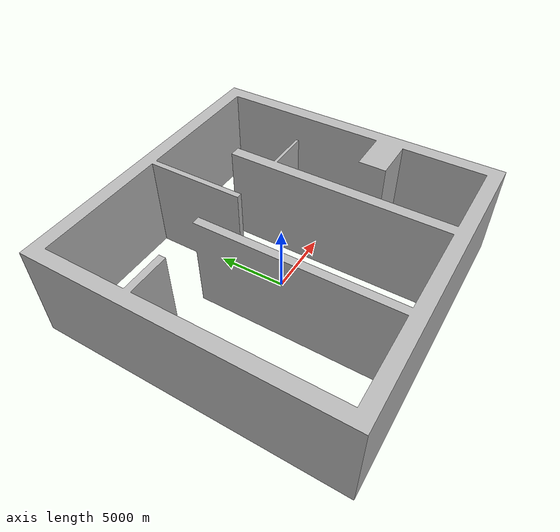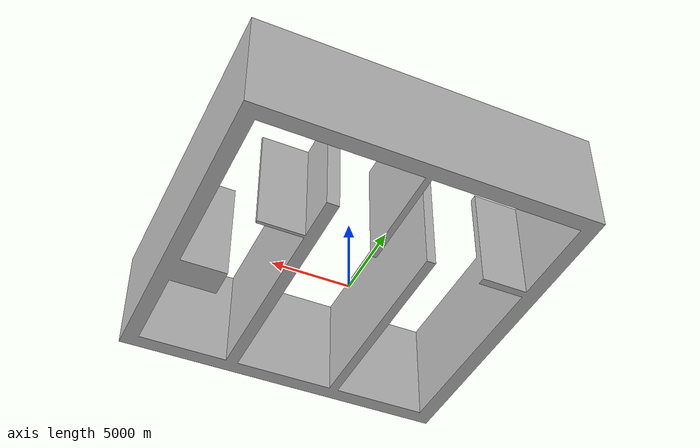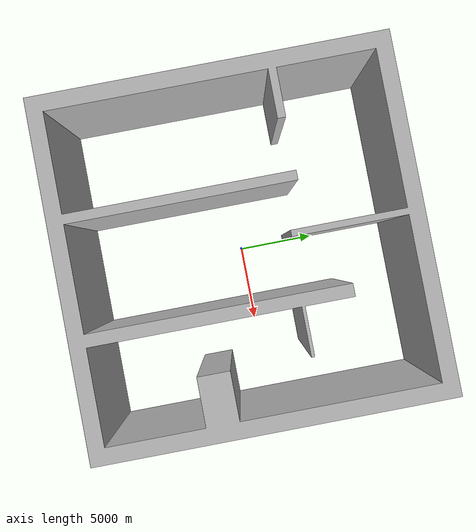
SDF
<?xml version="1.0"?>
<sdf version="1.6">
  <model name="Gazebo_World_Meter">
    <static>true</static>

    <link name="link">

      <visual name="visual">
        <geometry>
          <mesh>
            <uri>file://home/......./models/Gazebo_World_Meter/meshes/Gazebo_World_Meter.stl</uri>
            <scale>2 2 2</scale>
          </mesh>
        </geometry>
      </visual>

      <collision name="collision">
        <geometry>
          <mesh>
            <uri>file://home/......../models/Gazebo_World_Meter/meshes/Gazebo_World_Meter.stl</uri>
            <scale>2 2 2</scale>
          </mesh>
        </geometry>
      </collision>

    </link>
  </model>
</sdf>
